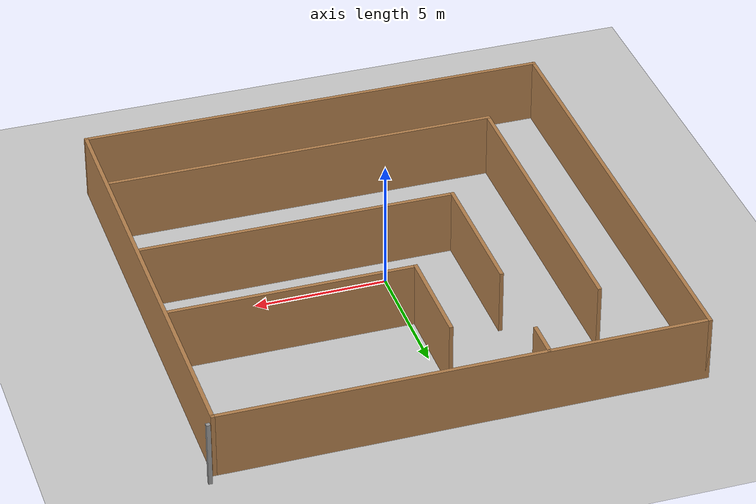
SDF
<sdf version="1.7">
 <world name="default">
  <light name="sun" type="directional">
   <pose>0 0 10 0 -0 0</pose>
   <diffuse>0.8 0.8 0.8 1</diffuse>
   <specular>0.2 0.2 0.2 1</specular>
   <attenuation>
    <range>1000</range>
    <constant>0.9</constant>
    <linear>0.01</linear>
    <quadratic>0.001</quadratic>
   </attenuation>
   <direction>-0.5 0.1 -0.9</direction>
   <spot><inner_angle>0</inner_angle><outer_angle>0</outer_angle><falloff>0</falloff></spot>
  </light>
  <model name="ground_plane">
   <static>1</static>
   <link name="link">
    <collision name="collision">
     <geometry><plane><normal>0 0 1</normal><size>100 100</size></plane></geometry>
     <surface>
      <contact><collide_bitmask>65535</collide_bitmask></contact>
      <friction><ode><mu>100</mu><mu2>50</mu2></ode></friction>
     </surface>
    </collision>
    <visual name="visual">
     <cast_shadows>0</cast_shadows>
     <geometry><plane><normal>0 0 1</normal><size>100 100</size></plane></geometry>
     <material>
      <script><uri>file://media/materials/scripts/gazebo.material</uri><name>Gazebo/Grey</name></script>
     </material>
    </visual>
   </link>
  </model>
  <gravity>0 0 -9.8</gravity>
  <magnetic_field>6e-06 2.3e-05 -4.2e-05</magnetic_field>
  <atmosphere type="adiabatic"/>
  <physics type="ode">
   <max_step_size>0.001</max_step_size>
   <real_time_factor>1</real_time_factor>
   <real_time_update_rate>1000</real_time_update_rate>
  </physics>
  <scene><ambient>0.4 0.4 0.4 1</ambient><background>0.7 0.7 0.7 1</background><shadows>1</shadows></scene>
  <spherical_coordinates>
   <surface_model>EARTH_WGS84</surface_model>
   <latitude_deg>0</latitude_deg>
   <longitude_deg>0</longitude_deg>
   <elevation>0</elevation>
   <heading_deg>0</heading_deg>
  </spherical_coordinates>
  <model name="maze">
   <link name="Wall_28">
    <pose>8.87242 -0.195571 0 0 0 -1.5708</pose>
    <visual name="Wall_28_Visual">
     <pose>0 0 1.25 0 -0 0</pose>
     <geometry><box><size>18.15 0.15 2.5</size></box></geometry>
     <material>
      <script><uri>file://media/materials/scripts/gazebo.material</uri><name>Gazebo/Wood</name></script>
      <ambient>1 1 1 1</ambient>
      <shader type="pixel"/>
     </material>
     <meta><layer>0</layer></meta>
    </visual>
    <collision name="Wall_28_Collision">
     <pose>0 0 1.25 0 -0 0</pose>
     <geometry><box><size>18.15 0.15 2.5</size></box></geometry>
     <surface>
      <friction>
       <ode><mu>1</mu><mu2>1</mu2><fdir1>0 0 0</fdir1><slip1>0</slip1><slip2>0</slip2></ode>
       <torsional>
        <coefficient>1</coefficient>
        <patch_radius>0</patch_radius>
        <surface_radius>0</surface_radius>
        <use_patch_radius>1</use_patch_radius>
        <ode><slip>0</slip></ode>
       </torsional>
      </friction>
      <bounce><restitution_coefficient>0</restitution_coefficient><threshold>1e+06</threshold></bounce>
      <contact>
       <collide_without_contact>0</collide_without_contact>
       <collide_without_contact_bitmask>1</collide_without_contact_bitmask>
       <collide_bitmask>1</collide_bitmask>
       <ode>
        <soft_cfm>0</soft_cfm>
        <soft_erp>0.2</soft_erp>
        <kp>1e+13</kp>
        <kd>1</kd>
        <max_vel>0.01</max_vel>
        <min_depth>0</min_depth>
       </ode>
       <bullet>
        <split_impulse>1</split_impulse>
        <split_impulse_penetration_threshold>-0.01</split_impulse_penetration_threshold>
        <soft_cfm>0</soft_cfm>
        <soft_erp>0.2</soft_erp>
        <kp>1e+13</kp>
        <kd>1</kd>
       </bullet>
      </contact>
     </surface>
    </collision>
   </link>
   <link name="Wall_30">
    <pose>-0.127585 -9.19557 0 0 -0 3.14159</pose>
    <visual name="Wall_30_Visual">
     <pose>0 0 1.25 0 -0 0</pose>
     <geometry><box><size>18.15 0.15 2.5</size></box></geometry>
     <material>
      <script><uri>file://media/materials/scripts/gazebo.material</uri><name>Gazebo/Wood</name></script>
      <ambient>1 1 1 1</ambient>
      <shader type="pixel"/>
     </material>
     <meta><layer>0</layer></meta>
    </visual>
    <collision name="Wall_30_Collision">
     <pose>0 0 1.25 0 -0 0</pose>
     <geometry><box><size>18.15 0.15 2.5</size></box></geometry>
     <surface>
      <friction>
       <ode><mu>1</mu><mu2>1</mu2><fdir1>0 0 0</fdir1><slip1>0</slip1><slip2>0</slip2></ode>
       <torsional>
        <coefficient>1</coefficient>
        <patch_radius>0</patch_radius>
        <surface_radius>0</surface_radius>
        <use_patch_radius>1</use_patch_radius>
        <ode><slip>0</slip></ode>
       </torsional>
      </friction>
      <bounce><restitution_coefficient>0</restitution_coefficient><threshold>1e+06</threshold></bounce>
      <contact>
       <collide_without_contact>0</collide_without_contact>
       <collide_without_contact_bitmask>1</collide_without_contact_bitmask>
       <collide_bitmask>1</collide_bitmask>
       <ode>
        <soft_cfm>0</soft_cfm>
        <soft_erp>0.2</soft_erp>
        <kp>1e+13</kp>
        <kd>1</kd>
        <max_vel>0.01</max_vel>
        <min_depth>0</min_depth>
       </ode>
       <bullet>
        <split_impulse>1</split_impulse>
        <split_impulse_penetration_threshold>-0.01</split_impulse_penetration_threshold>
        <soft_cfm>0</soft_cfm>
        <soft_erp>0.2</soft_erp>
        <kp>1e+13</kp>
        <kd>1</kd>
       </bullet>
      </contact>
     </surface>
    </collision>
   </link>
   <link name="Wall_31">
    <pose>-9.12758 -0.195571 0 0 -0 1.5708</pose>
    <visual name="Wall_31_Visual">
     <pose>0 0 1.25 0 -0 0</pose>
     <geometry><box><size>18.15 0.15 2.5</size></box></geometry>
     <material>
      <script><uri>file://media/materials/scripts/gazebo.material</uri><name>Gazebo/Wood</name></script>
      <ambient>1 1 1 1</ambient>
      <shader type="pixel"/>
     </material>
     <meta><layer>0</layer></meta>
    </visual>
    <collision name="Wall_31_Collision">
     <pose>0 0 1.25 0 -0 0</pose>
     <geometry><box><size>18.15 0.15 2.5</size></box></geometry>
     <surface>
      <friction>
       <ode><mu>1</mu><mu2>1</mu2><fdir1>0 0 0</fdir1><slip1>0</slip1><slip2>0</slip2></ode>
       <torsional>
        <coefficient>1</coefficient>
        <patch_radius>0</patch_radius>
        <surface_radius>0</surface_radius>
        <use_patch_radius>1</use_patch_radius>
        <ode><slip>0</slip></ode>
       </torsional>
      </friction>
      <bounce><restitution_coefficient>0</restitution_coefficient><threshold>1e+06</threshold></bounce>
      <contact>
       <collide_without_contact>0</collide_without_contact>
       <collide_without_contact_bitmask>1</collide_without_contact_bitmask>
       <collide_bitmask>1</collide_bitmask>
       <ode>
        <soft_cfm>0</soft_cfm>
        <soft_erp>0.2</soft_erp>
        <kp>1e+13</kp>
        <kd>1</kd>
        <max_vel>0.01</max_vel>
        <min_depth>0</min_depth>
       </ode>
       <bullet>
        <split_impulse>1</split_impulse>
        <split_impulse_penetration_threshold>-0.01</split_impulse_penetration_threshold>
        <soft_cfm>0</soft_cfm>
        <soft_erp>0.2</soft_erp>
        <kp>1e+13</kp>
        <kd>1</kd>
       </bullet>
      </contact>
     </surface>
    </collision>
   </link>
   <link name="Wall_34">
    <pose>9.12759 9.19557 0 0 -0 0</pose>
    <visual name="Wall_34_Visual">
     <pose>0 0 1.25 0 -0 0</pose>
     <geometry><box><size>0.15 0.15 2.5</size></box></geometry>
     <material>
      <script><uri>file://media/materials/scripts/gazebo.material</uri><name>Gazebo/Grey</name></script>
      <ambient>1 1 1 1</ambient>
      <shader type="pixel"/>
     </material>
     <meta><layer>0</layer></meta>
    </visual>
    <collision name="Wall_34_Collision">
     <pose>0 0 1.25 0 -0 0</pose>
     <geometry><box><size>0.15 0.15 2.5</size></box></geometry>
     <surface>
      <friction>
       <ode><mu>1</mu><mu2>1</mu2><fdir1>0 0 0</fdir1><slip1>0</slip1><slip2>0</slip2></ode>
       <torsional>
        <coefficient>1</coefficient>
        <patch_radius>0</patch_radius>
        <surface_radius>0</surface_radius>
        <use_patch_radius>1</use_patch_radius>
        <ode><slip>0</slip></ode>
       </torsional>
      </friction>
      <bounce><restitution_coefficient>0</restitution_coefficient><threshold>1e+06</threshold></bounce>
      <contact>
       <collide_without_contact>0</collide_without_contact>
       <collide_without_contact_bitmask>1</collide_without_contact_bitmask>
       <collide_bitmask>1</collide_bitmask>
       <ode>
        <soft_cfm>0</soft_cfm>
        <soft_erp>0.2</soft_erp>
        <kp>1e+13</kp>
        <kd>1</kd>
        <max_vel>0.01</max_vel>
        <min_depth>0</min_depth>
       </ode>
       <bullet>
        <split_impulse>1</split_impulse>
        <split_impulse_penetration_threshold>-0.01</split_impulse_penetration_threshold>
        <soft_cfm>0</soft_cfm>
        <soft_erp>0.2</soft_erp>
        <kp>1e+13</kp>
        <kd>1</kd>
       </bullet>
      </contact>
     </surface>
    </collision>
   </link>
   <link name="Wall_39">
    <pose>-0.127585 8.80443 0 0 -0 0</pose>
    <visual name="Wall_39_Visual">
     <pose>0 0 1.25 0 -0 0</pose>
     <geometry><box><size>18.15 0.15 2.5</size></box></geometry>
     <material>
      <script><uri>file://media/materials/scripts/gazebo.material</uri><name>Gazebo/Wood</name></script>
      <ambient>1 1 1 1</ambient>
      <shader type="pixel"/>
     </material>
     <meta><layer>0</layer></meta>
    </visual>
    <collision name="Wall_39_Collision">
     <pose>0 0 1.25 0 -0 0</pose>
     <geometry><box><size>18.15 0.15 2.5</size></box></geometry>
     <surface>
      <friction>
       <ode><mu>1</mu><mu2>1</mu2><fdir1>0 0 0</fdir1><slip1>0</slip1><slip2>0</slip2></ode>
       <torsional>
        <coefficient>1</coefficient>
        <patch_radius>0</patch_radius>
        <surface_radius>0</surface_radius>
        <use_patch_radius>1</use_patch_radius>
        <ode><slip>0</slip></ode>
       </torsional>
      </friction>
      <bounce><restitution_coefficient>0</restitution_coefficient><threshold>1e+06</threshold></bounce>
      <contact>
       <collide_without_contact>0</collide_without_contact>
       <collide_without_contact_bitmask>1</collide_without_contact_bitmask>
       <collide_bitmask>1</collide_bitmask>
       <ode>
        <soft_cfm>0</soft_cfm>
        <soft_erp>0.2</soft_erp>
        <kp>1e+13</kp>
        <kd>1</kd>
        <max_vel>0.01</max_vel>
        <min_depth>0</min_depth>
       </ode>
       <bullet>
        <split_impulse>1</split_impulse>
        <split_impulse_penetration_threshold>-0.01</split_impulse_penetration_threshold>
        <soft_cfm>0</soft_cfm>
        <soft_erp>0.2</soft_erp>
        <kp>1e+13</kp>
        <kd>1</kd>
       </bullet>
      </contact>
     </surface>
    </collision>
   </link>
   <link name="Wall_42">
    <pose>-0.381293 4.4894 0 0 0 -1.5708</pose>
    <visual name="Wall_42_Visual">
     <pose>0 0 1.25 0 -0 0</pose>
     <geometry><box><size>4 0.15 2.5</size></box></geometry>
     <material>
      <script><uri>file://media/materials/scripts/gazebo.material</uri><name>Gazebo/Wood</name></script>
      <ambient>1 1 1 1</ambient>
      <shader type="pixel"/>
     </material>
     <meta><layer>0</layer></meta>
    </visual>
    <collision name="Wall_42_Collision">
     <pose>0 0 1.25 0 -0 0</pose>
     <geometry><box><size>4 0.15 2.5</size></box></geometry>
     <surface>
      <friction>
       <ode><mu>1</mu><mu2>1</mu2><fdir1>0 0 0</fdir1><slip1>0</slip1><slip2>0</slip2></ode>
       <torsional>
        <coefficient>1</coefficient>
        <patch_radius>0</patch_radius>
        <surface_radius>0</surface_radius>
        <use_patch_radius>1</use_patch_radius>
        <ode><slip>0</slip></ode>
       </torsional>
      </friction>
      <bounce><restitution_coefficient>0</restitution_coefficient><threshold>1e+06</threshold></bounce>
      <contact>
       <collide_without_contact>0</collide_without_contact>
       <collide_without_contact_bitmask>1</collide_without_contact_bitmask>
       <collide_bitmask>1</collide_bitmask>
       <ode>
        <soft_cfm>0</soft_cfm>
        <soft_erp>0.2</soft_erp>
        <kp>1e+13</kp>
        <kd>1</kd>
        <max_vel>0.01</max_vel>
        <min_depth>0</min_depth>
       </ode>
       <bullet>
        <split_impulse>1</split_impulse>
        <split_impulse_penetration_threshold>-0.01</split_impulse_penetration_threshold>
        <soft_cfm>0</soft_cfm>
        <soft_erp>0.2</soft_erp>
        <kp>1e+13</kp>
        <kd>1</kd>
       </bullet>
      </contact>
     </surface>
    </collision>
   </link>
   <link name="Wall_43">
    <pose>4.16871 2.5644 0 0 -0 0</pose>
    <visual name="Wall_43_Visual">
     <pose>0 0 1.25 0 -0 0</pose>
     <geometry><box><size>9.25 0.15 2.5</size></box></geometry>
     <material>
      <script><uri>file://media/materials/scripts/gazebo.material</uri><name>Gazebo/Wood</name></script>
      <ambient>1 1 1 1</ambient>
      <shader type="pixel"/>
     </material>
     <meta><layer>0</layer></meta>
    </visual>
    <collision name="Wall_43_Collision">
     <pose>0 0 1.25 0 -0 0</pose>
     <geometry><box><size>9.25 0.15 2.5</size></box></geometry>
     <surface>
      <friction>
       <ode><mu>1</mu><mu2>1</mu2><fdir1>0 0 0</fdir1><slip1>0</slip1><slip2>0</slip2></ode>
       <torsional>
        <coefficient>1</coefficient>
        <patch_radius>0</patch_radius>
        <surface_radius>0</surface_radius>
        <use_patch_radius>1</use_patch_radius>
        <ode><slip>0</slip></ode>
       </torsional>
      </friction>
      <bounce><restitution_coefficient>0</restitution_coefficient><threshold>1e+06</threshold></bounce>
      <contact>
       <collide_without_contact>0</collide_without_contact>
       <collide_without_contact_bitmask>1</collide_without_contact_bitmask>
       <collide_bitmask>1</collide_bitmask>
       <ode>
        <soft_cfm>0</soft_cfm>
        <soft_erp>0.2</soft_erp>
        <kp>1e+13</kp>
        <kd>1</kd>
        <max_vel>0.01</max_vel>
        <min_depth>0</min_depth>
       </ode>
       <bullet>
        <split_impulse>1</split_impulse>
        <split_impulse_penetration_threshold>-0.01</split_impulse_penetration_threshold>
        <soft_cfm>0</soft_cfm>
        <soft_erp>0.2</soft_erp>
        <kp>1e+13</kp>
        <kd>1</kd>
       </bullet>
      </contact>
     </surface>
    </collision>
   </link>
   <link name="Wall_45">
    <pose>-3.13227 1.23116 0 0 0 -1.5708</pose>
    <visual name="Wall_45_Visual">
     <pose>0 0 1.25 0 -0 0</pose>
     <geometry><box><size>5.5 0.15 2.5</size></box></geometry>
     <material>
      <script><uri>file://media/materials/scripts/gazebo.material</uri><name>Gazebo/Wood</name></script>
      <ambient>1 1 1 1</ambient>
      <shader type="pixel"/>
     </material>
     <meta><layer>0</layer></meta>
    </visual>
    <collision name="Wall_45_Collision">
     <pose>0 0 1.25 0 -0 0</pose>
     <geometry><box><size>5.5 0.15 2.5</size></box></geometry>
     <surface>
      <friction>
       <ode><mu>1</mu><mu2>1</mu2><fdir1>0 0 0</fdir1><slip1>0</slip1><slip2>0</slip2></ode>
       <torsional>
        <coefficient>1</coefficient>
        <patch_radius>0</patch_radius>
        <surface_radius>0</surface_radius>
        <use_patch_radius>1</use_patch_radius>
        <ode><slip>0</slip></ode>
       </torsional>
      </friction>
      <bounce><restitution_coefficient>0</restitution_coefficient><threshold>1e+06</threshold></bounce>
      <contact>
       <collide_without_contact>0</collide_without_contact>
       <collide_without_contact_bitmask>1</collide_without_contact_bitmask>
       <collide_bitmask>1</collide_bitmask>
       <ode>
        <soft_cfm>0</soft_cfm>
        <soft_erp>0.2</soft_erp>
        <kp>1e+13</kp>
        <kd>1</kd>
        <max_vel>0.01</max_vel>
        <min_depth>0</min_depth>
       </ode>
       <bullet>
        <split_impulse>1</split_impulse>
        <split_impulse_penetration_threshold>-0.01</split_impulse_penetration_threshold>
        <soft_cfm>0</soft_cfm>
        <soft_erp>0.2</soft_erp>
        <kp>1e+13</kp>
        <kd>1</kd>
       </bullet>
      </contact>
     </surface>
    </collision>
   </link>
   <link name="Wall_46">
    <pose>2.79273 -1.44384 0 0 -0 0</pose>
    <visual name="Wall_46_Visual">
     <pose>0 0 1.25 0 -0 0</pose>
     <geometry><box><size>12 0.15 2.5</size></box></geometry>
     <material>
      <script><uri>file://media/materials/scripts/gazebo.material</uri><name>Gazebo/Wood</name></script>
      <ambient>1 1 1 1</ambient>
      <shader type="pixel"/>
     </material>
     <meta><layer>0</layer></meta>
    </visual>
    <collision name="Wall_46_Collision">
     <pose>0 0 1.25 0 -0 0</pose>
     <geometry><box><size>12 0.15 2.5</size></box></geometry>
     <surface>
      <friction>
       <ode><mu>1</mu><mu2>1</mu2><fdir1>0 0 0</fdir1><slip1>0</slip1><slip2>0</slip2></ode>
       <torsional>
        <coefficient>1</coefficient>
        <patch_radius>0</patch_radius>
        <surface_radius>0</surface_radius>
        <use_patch_radius>1</use_patch_radius>
        <ode><slip>0</slip></ode>
       </torsional>
      </friction>
      <bounce><restitution_coefficient>0</restitution_coefficient><threshold>1e+06</threshold></bounce>
      <contact>
       <collide_without_contact>0</collide_without_contact>
       <collide_without_contact_bitmask>1</collide_without_contact_bitmask>
       <collide_bitmask>1</collide_bitmask>
       <ode>
        <soft_cfm>0</soft_cfm>
        <soft_erp>0.2</soft_erp>
        <kp>1e+13</kp>
        <kd>1</kd>
        <max_vel>0.01</max_vel>
        <min_depth>0</min_depth>
       </ode>
       <bullet>
        <split_impulse>1</split_impulse>
        <split_impulse_penetration_threshold>-0.01</split_impulse_penetration_threshold>
        <soft_cfm>0</soft_cfm>
        <soft_erp>0.2</soft_erp>
        <kp>1e+13</kp>
        <kd>1</kd>
       </bullet>
      </contact>
     </surface>
    </collision>
   </link>
   <link name="Wall_52">
    <pose>-6.12599 -0.076976 0 0 0 -1.5708</pose>
    <visual name="Wall_52_Visual">
     <pose>0 0 1.25 0 -0 0</pose>
     <geometry><box><size>12 0.15 2.5</size></box></geometry>
     <material>
      <script><uri>file://media/materials/scripts/gazebo.material</uri><name>Gazebo/Wood</name></script>
      <ambient>1 1 1 1</ambient>
      <shader type="pixel"/>
     </material>
     <meta><layer>0</layer></meta>
    </visual>
    <collision name="Wall_52_Collision">
     <pose>0 0 1.25 0 -0 0</pose>
     <geometry><box><size>12 0.15 2.5</size></box></geometry>
     <surface>
      <friction>
       <ode><mu>1</mu><mu2>1</mu2><fdir1>0 0 0</fdir1><slip1>0</slip1><slip2>0</slip2></ode>
       <torsional>
        <coefficient>1</coefficient>
        <patch_radius>0</patch_radius>
        <surface_radius>0</surface_radius>
        <use_patch_radius>1</use_patch_radius>
        <ode><slip>0</slip></ode>
       </torsional>
      </friction>
      <bounce><restitution_coefficient>0</restitution_coefficient><threshold>1e+06</threshold></bounce>
      <contact>
       <collide_without_contact>0</collide_without_contact>
       <collide_without_contact_bitmask>1</collide_without_contact_bitmask>
       <collide_bitmask>1</collide_bitmask>
       <ode>
        <soft_cfm>0</soft_cfm>
        <soft_erp>0.2</soft_erp>
        <kp>1e+13</kp>
        <kd>1</kd>
        <max_vel>0.01</max_vel>
        <min_depth>0</min_depth>
       </ode>
       <bullet>
        <split_impulse>1</split_impulse>
        <split_impulse_penetration_threshold>-0.01</split_impulse_penetration_threshold>
        <soft_cfm>0</soft_cfm>
        <soft_erp>0.2</soft_erp>
        <kp>1e+13</kp>
        <kd>1</kd>
       </bullet>
      </contact>
     </surface>
    </collision>
   </link>
   <link name="Wall_53">
    <pose>1.29902 -6.00198 0 0 -0 0</pose>
    <visual name="Wall_53_Visual">
     <pose>0 0 1.25 0 -0 0</pose>
     <geometry><box><size>15 0.15 2.5</size></box></geometry>
     <material>
      <script><uri>file://media/materials/scripts/gazebo.material</uri><name>Gazebo/Wood</name></script>
      <ambient>1 1 1 1</ambient>
      <shader type="pixel"/>
     </material>
     <meta><layer>0</layer></meta>
    </visual>
    <collision name="Wall_53_Collision">
     <pose>0 0 1.25 0 -0 0</pose>
     <geometry><box><size>15 0.15 2.5</size></box></geometry>
     <surface>
      <friction>
       <ode><mu>1</mu><mu2>1</mu2><fdir1>0 0 0</fdir1><slip1>0</slip1><slip2>0</slip2></ode>
       <torsional>
        <coefficient>1</coefficient>
        <patch_radius>0</patch_radius>
        <surface_radius>0</surface_radius>
        <use_patch_radius>1</use_patch_radius>
        <ode><slip>0</slip></ode>
       </torsional>
      </friction>
      <bounce><restitution_coefficient>0</restitution_coefficient><threshold>1e+06</threshold></bounce>
      <contact>
       <collide_without_contact>0</collide_without_contact>
       <collide_without_contact_bitmask>1</collide_without_contact_bitmask>
       <collide_bitmask>1</collide_bitmask>
       <ode>
        <soft_cfm>0</soft_cfm>
        <soft_erp>0.2</soft_erp>
        <kp>1e+13</kp>
        <kd>1</kd>
        <max_vel>0.01</max_vel>
        <min_depth>0</min_depth>
       </ode>
       <bullet>
        <split_impulse>1</split_impulse>
        <split_impulse_penetration_threshold>-0.01</split_impulse_penetration_threshold>
        <soft_cfm>0</soft_cfm>
        <soft_erp>0.2</soft_erp>
        <kp>1e+13</kp>
        <kd>1</kd>
       </bullet>
      </contact>
     </surface>
    </collision>
   </link>
   <link name="Wall_55">
    <pose>-3.17273 8.09816 0 0 -0 1.5708</pose>
    <visual name="Wall_55_Visual">
     <pose>0 0 1.25 0 -0 0</pose>
     <geometry><box><size>1.5 0.15 2.5</size></box></geometry>
     <material>
      <script><uri>file://media/materials/scripts/gazebo.material</uri><name>Gazebo/Wood</name></script>
      <ambient>1 1 1 1</ambient>
      <shader type="pixel"/>
     </material>
     <meta><layer>0</layer></meta>
    </visual>
    <collision name="Wall_55_Collision">
     <pose>0 0 1.25 0 -0 0</pose>
     <geometry><box><size>1.5 0.15 2.5</size></box></geometry>
     <surface>
      <friction>
       <ode><mu>1</mu><mu2>1</mu2><fdir1>0 0 0</fdir1><slip1>0</slip1><slip2>0</slip2></ode>
       <torsional>
        <coefficient>1</coefficient>
        <patch_radius>0</patch_radius>
        <surface_radius>0</surface_radius>
        <use_patch_radius>1</use_patch_radius>
        <ode><slip>0</slip></ode>
       </torsional>
      </friction>
      <bounce><restitution_coefficient>0</restitution_coefficient><threshold>1e+06</threshold></bounce>
      <contact>
       <collide_without_contact>0</collide_without_contact>
       <collide_without_contact_bitmask>1</collide_without_contact_bitmask>
       <collide_bitmask>1</collide_bitmask>
       <ode>
        <soft_cfm>0</soft_cfm>
        <soft_erp>0.2</soft_erp>
        <kp>1e+13</kp>
        <kd>1</kd>
        <max_vel>0.01</max_vel>
        <min_depth>0</min_depth>
       </ode>
       <bullet>
        <split_impulse>1</split_impulse>
        <split_impulse_penetration_threshold>-0.01</split_impulse_penetration_threshold>
        <soft_cfm>0</soft_cfm>
        <soft_erp>0.2</soft_erp>
        <kp>1e+13</kp>
        <kd>1</kd>
       </bullet>
      </contact>
     </surface>
    </collision>
   </link>
   <static>1</static>
   <pose>0.127585 0.195571 0 0 -0 0</pose>
  </model>
 </world>
</sdf>
